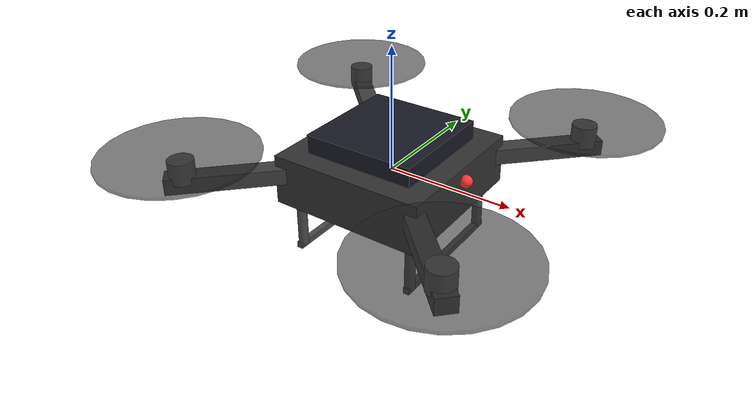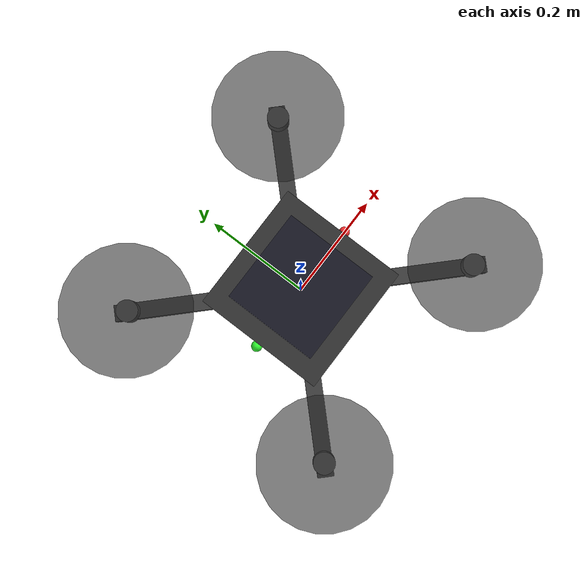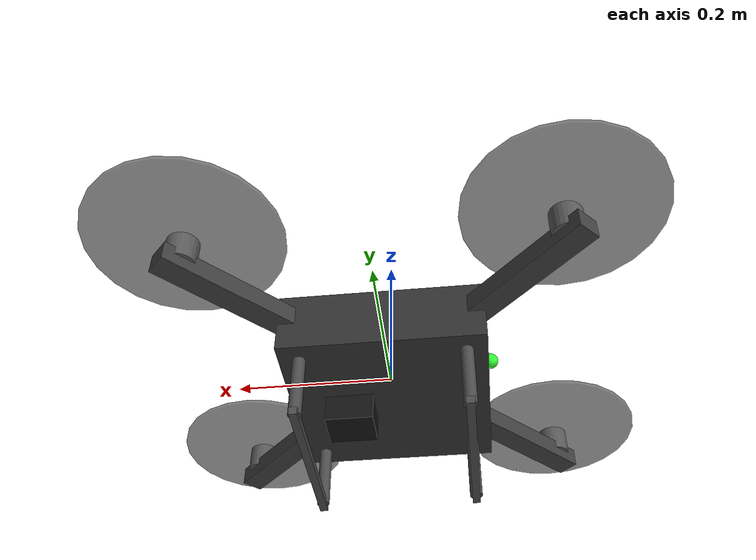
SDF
<?xml version="1.0" ?>
<!--
  RMUC2026 空中机器人 - 四旋翼无人机模型
  尺寸参考: 机身约 0.45m x 0.45m x 0.15m, 轴距约 0.55m
  静态模型，用于雷达仿真中的视觉目标
-->
<sdf version="1.7">
  <model name="aerial_robot">
    <static>true</static>

    <!-- 主机身 -->
    <link name="body">
      <inertial>
        <mass>3.5</mass>
        <inertia>
          <ixx>0.05</ixx><ixy>0</ixy><ixz>0</ixz>
          <iyy>0.05</iyy><iyz>0</iyz>
          <izz>0.08</izz>
        </inertia>
      </inertial>

      <!-- 中心机身 - 扁平六面体 -->
      <visual name="body_visual">
        <pose>0 0 0 0 0 0</pose>
        <geometry>
          <box><size>0.25 0.25 0.08</size></box>
        </geometry>
        <material>
          <ambient>0.15 0.15 0.15 1</ambient>
          <diffuse>0.2 0.2 0.2 1</diffuse>
          <specular>0.3 0.3 0.3 1</specular>
        </material>
      </visual>
      <collision name="body_collision">
        <pose>0 0 0 0 0 0</pose>
        <geometry>
          <box><size>0.25 0.25 0.08</size></box>
        </geometry>
      </collision>

      <!-- 上盖板 (电池/电控区域) -->
      <visual name="top_plate_visual">
        <pose>0 0 0.055 0 0 0</pose>
        <geometry>
          <box><size>0.18 0.18 0.03</size></box>
        </geometry>
        <material>
          <ambient>0.08 0.08 0.1 1</ambient>
          <diffuse>0.1 0.1 0.15 1</diffuse>
          <specular>0.2 0.2 0.2 1</specular>
        </material>
      </visual>

      <!-- 底部载荷/相机 -->
      <visual name="camera_visual">
        <pose>0.05 0 -0.055 0 0 0</pose>
        <geometry>
          <box><size>0.06 0.05 0.04</size></box>
        </geometry>
        <material>
          <ambient>0.05 0.05 0.05 1</ambient>
          <diffuse>0.08 0.08 0.08 1</diffuse>
          <specular>0.4 0.4 0.4 1</specular>
        </material>
      </visual>

      <!-- ===== 旋翼臂 (4个对角方向) ===== -->
      <!-- 前右臂 -->
      <visual name="arm_fr_visual">
        <pose>0.14 -0.14 0.01 0 0 -0.785</pose>
        <geometry>
          <box><size>0.28 0.03 0.025</size></box>
        </geometry>
        <material>
          <ambient>0.2 0.2 0.2 1</ambient>
          <diffuse>0.25 0.25 0.25 1</diffuse>
          <specular>0.3 0.3 0.3 1</specular>
        </material>
      </visual>

      <!-- 前左臂 -->
      <visual name="arm_fl_visual">
        <pose>0.14 0.14 0.01 0 0 0.785</pose>
        <geometry>
          <box><size>0.28 0.03 0.025</size></box>
        </geometry>
        <material>
          <ambient>0.2 0.2 0.2 1</ambient>
          <diffuse>0.25 0.25 0.25 1</diffuse>
          <specular>0.3 0.3 0.3 1</specular>
        </material>
      </visual>

      <!-- 后右臂 -->
      <visual name="arm_rr_visual">
        <pose>-0.14 -0.14 0.01 0 0 0.785</pose>
        <geometry>
          <box><size>0.28 0.03 0.025</size></box>
        </geometry>
        <material>
          <ambient>0.2 0.2 0.2 1</ambient>
          <diffuse>0.25 0.25 0.25 1</diffuse>
          <specular>0.3 0.3 0.3 1</specular>
        </material>
      </visual>

      <!-- 后左臂 -->
      <visual name="arm_rl_visual">
        <pose>-0.14 0.14 0.01 0 0 -0.785</pose>
        <geometry>
          <box><size>0.28 0.03 0.025</size></box>
        </geometry>
        <material>
          <ambient>0.2 0.2 0.2 1</ambient>
          <diffuse>0.25 0.25 0.25 1</diffuse>
          <specular>0.3 0.3 0.3 1</specular>
        </material>
      </visual>

      <!-- ===== 电机座 (4个) ===== -->
      <visual name="motor_fr_visual">
        <pose>0.22 -0.22 0.03 0 0 0</pose>
        <geometry>
          <cylinder><radius>0.02</radius><length>0.035</length></cylinder>
        </geometry>
        <material>
          <ambient>0.3 0.3 0.3 1</ambient>
          <diffuse>0.35 0.35 0.35 1</diffuse>
        </material>
      </visual>

      <visual name="motor_fl_visual">
        <pose>0.22 0.22 0.03 0 0 0</pose>
        <geometry>
          <cylinder><radius>0.02</radius><length>0.035</length></cylinder>
        </geometry>
        <material>
          <ambient>0.3 0.3 0.3 1</ambient>
          <diffuse>0.35 0.35 0.35 1</diffuse>
        </material>
      </visual>

      <visual name="motor_rr_visual">
        <pose>-0.22 -0.22 0.03 0 0 0</pose>
        <geometry>
          <cylinder><radius>0.02</radius><length>0.035</length></cylinder>
        </geometry>
        <material>
          <ambient>0.3 0.3 0.3 1</ambient>
          <diffuse>0.35 0.35 0.35 1</diffuse>
        </material>
      </visual>

      <visual name="motor_rl_visual">
        <pose>-0.22 0.22 0.03 0 0 0</pose>
        <geometry>
          <cylinder><radius>0.02</radius><length>0.035</length></cylinder>
        </geometry>
        <material>
          <ambient>0.3 0.3 0.3 1</ambient>
          <diffuse>0.35 0.35 0.35 1</diffuse>
        </material>
      </visual>

      <!-- ===== 螺旋桨 (4个扁平圆盘表示) ===== -->
      <visual name="prop_fr_visual">
        <pose>0.22 -0.22 0.055 0 0 0</pose>
        <geometry>
          <cylinder><radius>0.12</radius><length>0.005</length></cylinder>
        </geometry>
        <material>
          <ambient>0.1 0.1 0.1 0.6</ambient>
          <diffuse>0.15 0.15 0.15 0.6</diffuse>
        </material>
      </visual>

      <visual name="prop_fl_visual">
        <pose>0.22 0.22 0.055 0 0 0</pose>
        <geometry>
          <cylinder><radius>0.12</radius><length>0.005</length></cylinder>
        </geometry>
        <material>
          <ambient>0.1 0.1 0.1 0.6</ambient>
          <diffuse>0.15 0.15 0.15 0.6</diffuse>
        </material>
      </visual>

      <visual name="prop_rr_visual">
        <pose>-0.22 -0.22 0.055 0 0 0</pose>
        <geometry>
          <cylinder><radius>0.12</radius><length>0.005</length></cylinder>
        </geometry>
        <material>
          <ambient>0.1 0.1 0.1 0.6</ambient>
          <diffuse>0.15 0.15 0.15 0.6</diffuse>
        </material>
      </visual>

      <visual name="prop_rl_visual">
        <pose>-0.22 0.22 0.055 0 0 0</pose>
        <geometry>
          <cylinder><radius>0.12</radius><length>0.005</length></cylinder>
        </geometry>
        <material>
          <ambient>0.1 0.1 0.1 0.6</ambient>
          <diffuse>0.15 0.15 0.15 0.6</diffuse>
        </material>
      </visual>

      <!-- ===== 起落架 (4根细柱) ===== -->
      <visual name="leg_fr_visual">
        <pose>0.1 -0.1 -0.07 0 0 0</pose>
        <geometry>
          <cylinder><radius>0.008</radius><length>0.1</length></cylinder>
        </geometry>
        <material>
          <ambient>0.25 0.25 0.25 1</ambient>
          <diffuse>0.3 0.3 0.3 1</diffuse>
        </material>
      </visual>

      <visual name="leg_fl_visual">
        <pose>0.1 0.1 -0.07 0 0 0</pose>
        <geometry>
          <cylinder><radius>0.008</radius><length>0.1</length></cylinder>
        </geometry>
        <material>
          <ambient>0.25 0.25 0.25 1</ambient>
          <diffuse>0.3 0.3 0.3 1</diffuse>
        </material>
      </visual>

      <visual name="leg_rr_visual">
        <pose>-0.1 -0.1 -0.07 0 0 0</pose>
        <geometry>
          <cylinder><radius>0.008</radius><length>0.1</length></cylinder>
        </geometry>
        <material>
          <ambient>0.25 0.25 0.25 1</ambient>
          <diffuse>0.3 0.3 0.3 1</diffuse>
        </material>
      </visual>

      <visual name="leg_rl_visual">
        <pose>-0.1 0.1 -0.07 0 0 0</pose>
        <geometry>
          <cylinder><radius>0.008</radius><length>0.1</length></cylinder>
        </geometry>
        <material>
          <ambient>0.25 0.25 0.25 1</ambient>
          <diffuse>0.3 0.3 0.3 1</diffuse>
        </material>
      </visual>

      <!-- 起落架横杆 (前后各一根) -->
      <visual name="skid_front_visual">
        <pose>0.1 0 -0.12 0 0 0</pose>
        <geometry>
          <box><size>0.01 0.22 0.01</size></box>
        </geometry>
        <material>
          <ambient>0.25 0.25 0.25 1</ambient>
          <diffuse>0.3 0.3 0.3 1</diffuse>
        </material>
      </visual>

      <visual name="skid_rear_visual">
        <pose>-0.1 0 -0.12 0 0 0</pose>
        <geometry>
          <box><size>0.01 0.22 0.01</size></box>
        </geometry>
        <material>
          <ambient>0.25 0.25 0.25 1</ambient>
          <diffuse>0.3 0.3 0.3 1</diffuse>
        </material>
      </visual>

      <!-- ===== LED指示灯 (前方红色，后方绿色，便于辨别朝向) ===== -->
      <visual name="led_front_visual">
        <pose>0.13 0 0.02 0 0 0</pose>
        <geometry>
          <sphere><radius>0.01</radius></sphere>
        </geometry>
        <material>
          <ambient>1.0 0.1 0.1 1</ambient>
          <diffuse>1.0 0.2 0.2 1</diffuse>
          <emissive>0.8 0.1 0.1 1</emissive>
        </material>
      </visual>

      <visual name="led_rear_visual">
        <pose>-0.13 0 0.02 0 0 0</pose>
        <geometry>
          <sphere><radius>0.01</radius></sphere>
        </geometry>
        <material>
          <ambient>0.1 1.0 0.1 1</ambient>
          <diffuse>0.2 1.0 0.2 1</diffuse>
          <emissive>0.1 0.8 0.1 1</emissive>
        </material>
      </visual>

      <!-- 整体碰撞盒 -->
      <collision name="full_collision">
        <pose>0 0 0 0 0 0</pose>
        <geometry>
          <box><size>0.55 0.55 0.18</size></box>
        </geometry>
      </collision>
    </link>
  </model>
</sdf>
